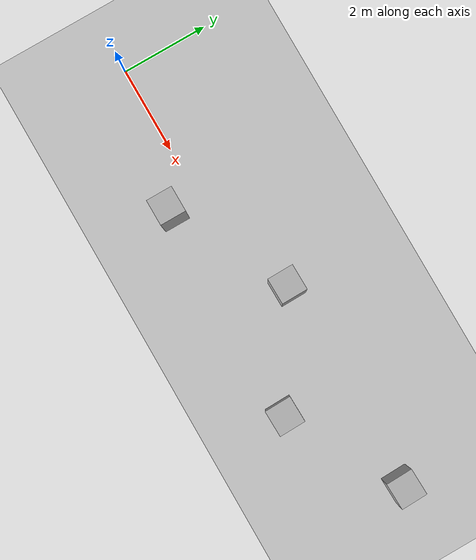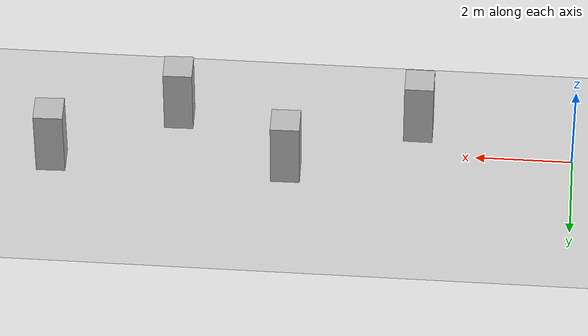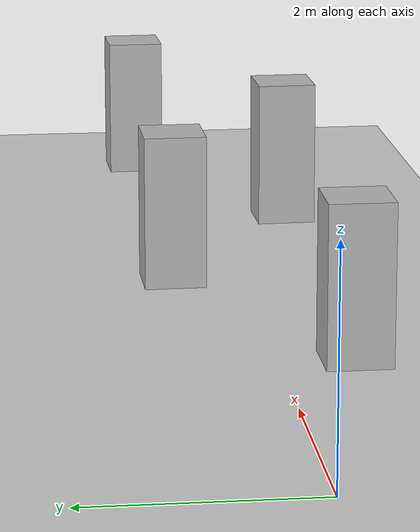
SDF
<?xml version="1.0"?>
<sdf version="1.6">
  <world name="v2-04g-r6-i3-compile-support-static-s5155">
    <gravity>0 0 -9.81</gravity>
    <physics name="v2_deterministic" type="ode">
      <max_step_size>0.002</max_step_size>
      <real_time_update_rate>500</real_time_update_rate>
    </physics>
    <include>
      <uri>model://sun</uri>
    </include>
    <include>
      <uri>model://ground_plane</uri>
    </include>
    <model name="pillar-1">
      <static>true</static>
      <pose>3.218482111 -0.679959330 0.750000000 0 0 0.001102472</pose>
      <link name="link">
        <collision name="collision">
          <geometry>
            <box>
              <size>0.600000 0.600000 1.500000</size>
            </box>
          </geometry>
        </collision>
        <visual name="visual">
          <geometry>
            <box>
              <size>0.600000 0.600000 1.500000</size>
            </box>
          </geometry>
        </visual>
      </link>
    </model>
    <model name="pillar-2">
      <static>true</static>
      <pose>5.892156348 0.683849744 0.750000000 0 0 0.012827281</pose>
      <link name="link">
        <collision name="collision">
          <geometry>
            <box>
              <size>0.600000 0.600000 1.500000</size>
            </box>
          </geometry>
        </collision>
        <visual name="visual">
          <geometry>
            <box>
              <size>0.600000 0.600000 1.500000</size>
            </box>
          </geometry>
        </visual>
      </link>
    </model>
    <model name="pillar-3">
      <static>true</static>
      <pose>8.223854185 -0.724102187 0.750000000 0 0 0.023308702</pose>
      <link name="link">
        <collision name="collision">
          <geometry>
            <box>
              <size>0.600000 0.600000 1.500000</size>
            </box>
          </geometry>
        </collision>
        <visual name="visual">
          <geometry>
            <box>
              <size>0.600000 0.600000 1.500000</size>
            </box>
          </geometry>
        </visual>
      </link>
    </model>
    <model name="pillar-4">
      <static>true</static>
      <pose>10.753266317 0.689968437 0.750000000 0 0 0.029319010</pose>
      <link name="link">
        <collision name="collision">
          <geometry>
            <box>
              <size>0.600000 0.600000 1.500000</size>
            </box>
          </geometry>
        </collision>
        <visual name="visual">
          <geometry>
            <box>
              <size>0.600000 0.600000 1.500000</size>
            </box>
          </geometry>
        </visual>
      </link>
    </model>
  </world>
</sdf>
